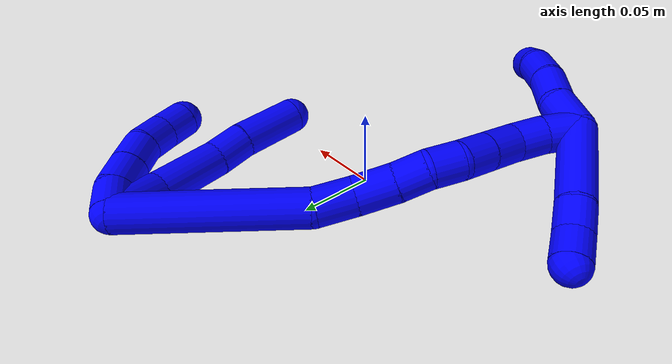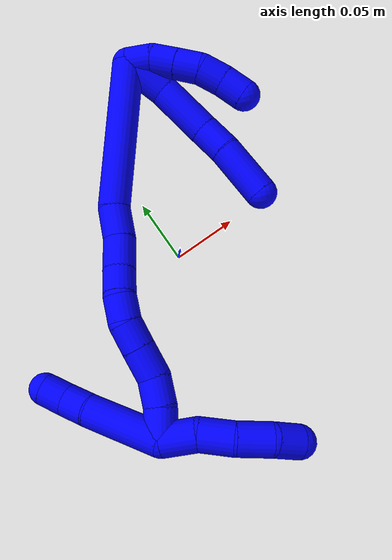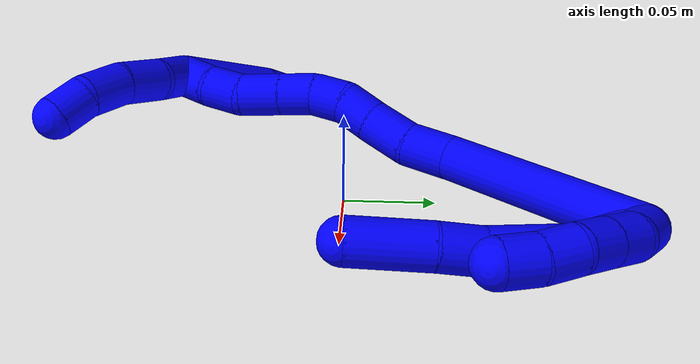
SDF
<sdf version="1.7">
 <world name="default">
  <model name="1">
   <static>0</static>
   <link name="1">
    <collision name="collision-cylinder-e_1_2_8">
     <pose>-0.013343 -0.004013 0.011307 0.341028 -0.838421 -0.153161</pose>
     <geometry><cylinder><radius>0.0125</radius><length>0.035889</length></cylinder></geometry>
     <surface>
      <friction><ode><mu>1.16</mu><mu2>1.16</mu2><slip1>0</slip1><slip2>0</slip2></ode></friction>
      <contact><ode><kp>1e+06</kp><kd>1</kd><max_vel>0</max_vel><min_depth>0.001</min_depth></ode></contact>
     </surface>
    </collision>
    <visual name="visual-cylinder-e_1_2_8">
     <pose>-0.013343 -0.004013 0.011307 0.341028 -0.838421 -0.153161</pose>
     <geometry><cylinder><radius>0.0125</radius><length>0.035889</length></cylinder></geometry>
     <material><ambient>0 0 1 1</ambient></material>
    </visual>
    <collision name="collision-cylinder-e_2_8_9">
     <pose>-0.045926 -0.007906 0.03513 -0.009609 -0.994059 0.005212</pose>
     <geometry><cylinder><radius>0.0125</radius><length>0.045904</length></cylinder></geometry>
     <surface>
      <friction><ode><mu>1.16</mu><mu2>1.16</mu2><slip1>0</slip1><slip2>0</slip2></ode></friction>
      <contact><ode><kp>1e+06</kp><kd>1</kd><max_vel>0</max_vel><min_depth>0.001</min_depth></ode></contact>
     </surface>
    </collision>
    <visual name="visual-cylinder-e_2_8_9">
     <pose>-0.045926 -0.007906 0.03513 -0.009609 -0.994059 0.005212</pose>
     <geometry><cylinder><radius>0.0125</radius><length>0.045904</length></cylinder></geometry>
     <material><ambient>0 0 1 1</ambient></material>
    </visual>
    <collision name="collision-cylinder-e_3_9_10">
     <pose>-0.075046 -0.006188 0.054219 -0.23831 -0.97037 0.126072</pose>
     <geometry><cylinder><radius>0.0125</radius><length>0.023951</length></cylinder></geometry>
     <surface>
      <friction><ode><mu>1.16</mu><mu2>1.16</mu2><slip1>0</slip1><slip2>0</slip2></ode></friction>
      <contact><ode><kp>1e+06</kp><kd>1</kd><max_vel>0</max_vel><min_depth>0.001</min_depth></ode></contact>
     </surface>
    </collision>
    <visual name="visual-cylinder-e_3_9_10">
     <pose>-0.075046 -0.006188 0.054219 -0.23831 -0.97037 0.126072</pose>
     <geometry><cylinder><radius>0.0125</radius><length>0.023951</length></cylinder></geometry>
     <material><ambient>0 0 1 1</ambient></material>
    </visual>
    <collision name="collision-cylinder-e_4_10_6">
     <pose>-0.104511 -0.003089 0.070986 -0.146349 -1.08654 0.088479</pose>
     <geometry><cylinder><radius>0.0125</radius><length>0.044256</length></cylinder></geometry>
     <surface>
      <friction><ode><mu>1.16</mu><mu2>1.16</mu2><slip1>0</slip1><slip2>0</slip2></ode></friction>
      <contact><ode><kp>1e+06</kp><kd>1</kd><max_vel>0</max_vel><min_depth>0.001</min_depth></ode></contact>
     </surface>
    </collision>
    <visual name="visual-cylinder-e_4_10_6">
     <pose>-0.104511 -0.003089 0.070986 -0.146349 -1.08654 0.088479</pose>
     <geometry><cylinder><radius>0.0125</radius><length>0.044256</length></cylinder></geometry>
     <material><ambient>0 0 1 1</ambient></material>
    </visual>
    <collision name="collision-cylinder-e_1_2_11">
     <pose>-0.000958 2.3e-05 0.009954 -0.002318 -0.095973 0.000111</pose>
     <geometry><cylinder><radius>0.0125</radius><length>0.02</length></cylinder></geometry>
     <surface>
      <friction><ode><mu>1.16</mu><mu2>1.16</mu2><slip1>0</slip1><slip2>0</slip2></ode></friction>
      <contact><ode><kp>1e+06</kp><kd>1</kd><max_vel>0</max_vel><min_depth>0.001</min_depth></ode></contact>
     </surface>
    </collision>
    <visual name="visual-cylinder-e_1_2_11">
     <pose>-0.000958 2.3e-05 0.009954 -0.002318 -0.095973 0.000111</pose>
     <geometry><cylinder><radius>0.0125</radius><length>0.02</length></cylinder></geometry>
     <material><ambient>0 0 1 1</ambient></material>
    </visual>
    <collision name="collision-cylinder-e_2_11_12">
     <pose>-0.0062 0.000354 0.028939 -0.034075 -0.442647 0.007668</pose>
     <geometry><cylinder><radius>0.0125</radius><length>0.02</length></cylinder></geometry>
     <surface>
      <friction><ode><mu>1.16</mu><mu2>1.16</mu2><slip1>0</slip1><slip2>0</slip2></ode></friction>
      <contact><ode><kp>1e+06</kp><kd>1</kd><max_vel>0</max_vel><min_depth>0.001</min_depth></ode></contact>
     </surface>
    </collision>
    <visual name="visual-cylinder-e_2_11_12">
     <pose>-0.0062 0.000354 0.028939 -0.034075 -0.442647 0.007668</pose>
     <geometry><cylinder><radius>0.0125</radius><length>0.02</length></cylinder></geometry>
     <material><ambient>0 0 1 1</ambient></material>
    </visual>
    <collision name="collision-cylinder-e_3_12_13">
     <pose>-0.01491 0.000783 0.046936 -0.013487 -0.45864 0.003148</pose>
     <geometry><cylinder><radius>0.0125</radius><length>0.02</length></cylinder></geometry>
     <surface>
      <friction><ode><mu>1.16</mu><mu2>1.16</mu2><slip1>0</slip1><slip2>0</slip2></ode></friction>
      <contact><ode><kp>1e+06</kp><kd>1</kd><max_vel>0</max_vel><min_depth>0.001</min_depth></ode></contact>
     </surface>
    </collision>
    <visual name="visual-cylinder-e_3_12_13">
     <pose>-0.01491 0.000783 0.046936 -0.013487 -0.45864 0.003148</pose>
     <geometry><cylinder><radius>0.0125</radius><length>0.02</length></cylinder></geometry>
     <material><ambient>0 0 1 1</ambient></material>
    </visual>
    <collision name="collision-cylinder-e_4_13_14">
     <pose>-0.025838 -0.000329 0.0634 0.162894 -0.707634 -0.060282</pose>
     <geometry><cylinder><radius>0.0125</radius><length>0.02</length></cylinder></geometry>
     <surface>
      <friction><ode><mu>1.16</mu><mu2>1.16</mu2><slip1>0</slip1><slip2>0</slip2></ode></friction>
      <contact><ode><kp>1e+06</kp><kd>1</kd><max_vel>0</max_vel><min_depth>0.001</min_depth></ode></contact>
     </surface>
    </collision>
    <visual name="visual-cylinder-e_4_13_14">
     <pose>-0.025838 -0.000329 0.0634 0.162894 -0.707634 -0.060282</pose>
     <geometry><cylinder><radius>0.0125</radius><length>0.02</length></cylinder></geometry>
     <material><ambient>0 0 1 1</ambient></material>
    </visual>
    <collision name="collision-cylinder-e_5_14_5">
     <pose>-0.039742 -0.001766 0.077617 0.030472 -0.833616 -0.013492</pose>
     <geometry><cylinder><radius>0.0125</radius><length>0.02</length></cylinder></geometry>
     <surface>
      <friction><ode><mu>1.16</mu><mu2>1.16</mu2><slip1>0</slip1><slip2>0</slip2></ode></friction>
      <contact><ode><kp>1e+06</kp><kd>1</kd><max_vel>0</max_vel><min_depth>0.001</min_depth></ode></contact>
     </surface>
    </collision>
    <visual name="visual-cylinder-e_5_14_5">
     <pose>-0.039742 -0.001766 0.077617 0.030472 -0.833616 -0.013492</pose>
     <geometry><cylinder><radius>0.0125</radius><length>0.02</length></cylinder></geometry>
     <material><ambient>0 0 1 1</ambient></material>
    </visual>
    <collision name="collision-cylinder-e_1_2_15">
     <pose>-0.056026 0.010728 -0.015079 -2.52326 -1.25177 2.30942</pose>
     <geometry><cylinder><radius>0.0125</radius><length>0.118007</length></cylinder></geometry>
     <surface>
      <friction><ode><mu>1.16</mu><mu2>1.16</mu2><slip1>0</slip1><slip2>0</slip2></ode></friction>
      <contact><ode><kp>1e+06</kp><kd>1</kd><max_vel>0</max_vel><min_depth>0.001</min_depth></ode></contact>
     </surface>
    </collision>
    <visual name="visual-cylinder-e_1_2_15">
     <pose>-0.056026 0.010728 -0.015079 -2.52326 -1.25177 2.30942</pose>
     <geometry><cylinder><radius>0.0125</radius><length>0.118007</length></cylinder></geometry>
     <material><ambient>0 0 1 1</ambient></material>
    </visual>
    <collision name="collision-cylinder-e_2_15_16">
     <pose>-0.124673 0.024441 -0.029839 -1.464 -1.3372 1.23457</pose>
     <geometry><cylinder><radius>0.0125</radius><length>0.025945</length></cylinder></geometry>
     <surface>
      <friction><ode><mu>1.16</mu><mu2>1.16</mu2><slip1>0</slip1><slip2>0</slip2></ode></friction>
      <contact><ode><kp>1e+06</kp><kd>1</kd><max_vel>0</max_vel><min_depth>0.001</min_depth></ode></contact>
     </surface>
    </collision>
    <visual name="visual-cylinder-e_2_15_16">
     <pose>-0.124673 0.024441 -0.029839 -1.464 -1.3372 1.23457</pose>
     <geometry><cylinder><radius>0.0125</radius><length>0.025945</length></cylinder></geometry>
     <material><ambient>0 0 1 1</ambient></material>
    </visual>
    <collision name="collision-cylinder-e_3_16_17">
     <pose>-0.149087 0.033046 -0.03081 -1.7967 -1.11608 1.32976</pose>
     <geometry><cylinder><radius>0.0125</radius><length>0.026255</length></cylinder></geometry>
     <surface>
      <friction><ode><mu>1.16</mu><mu2>1.16</mu2><slip1>0</slip1><slip2>0</slip2></ode></friction>
      <contact><ode><kp>1e+06</kp><kd>1</kd><max_vel>0</max_vel><min_depth>0.001</min_depth></ode></contact>
     </surface>
    </collision>
    <visual name="visual-cylinder-e_3_16_17">
     <pose>-0.149087 0.033046 -0.03081 -1.7967 -1.11608 1.32976</pose>
     <geometry><cylinder><radius>0.0125</radius><length>0.026255</length></cylinder></geometry>
     <material><ambient>0 0 1 1</ambient></material>
    </visual>
    <collision name="collision-cylinder-e_4_17_18">
     <pose>-0.169692 0.0436 -0.032539 -1.65923 -1.05861 1.13741</pose>
     <geometry><cylinder><radius>0.0125</radius><length>0.020219</length></cylinder></geometry>
     <surface>
      <friction><ode><mu>1.16</mu><mu2>1.16</mu2><slip1>0</slip1><slip2>0</slip2></ode></friction>
      <contact><ode><kp>1e+06</kp><kd>1</kd><max_vel>0</max_vel><min_depth>0.001</min_depth></ode></contact>
     </surface>
    </collision>
    <visual name="visual-cylinder-e_4_17_18">
     <pose>-0.169692 0.0436 -0.032539 -1.65923 -1.05861 1.13741</pose>
     <geometry><cylinder><radius>0.0125</radius><length>0.020219</length></cylinder></geometry>
     <material><ambient>0 0 1 1</ambient></material>
    </visual>
    <collision name="collision-cylinder-e_5_18_19">
     <pose>-0.188415 0.050576 -0.032524 -1.35246 -1.3629 1.15392</pose>
     <geometry><cylinder><radius>0.0125</radius><length>0.020257</length></cylinder></geometry>
     <surface>
      <friction><ode><mu>1.16</mu><mu2>1.16</mu2><slip1>0</slip1><slip2>0</slip2></ode></friction>
      <contact><ode><kp>1e+06</kp><kd>1</kd><max_vel>0</max_vel><min_depth>0.001</min_depth></ode></contact>
     </surface>
    </collision>
    <visual name="visual-cylinder-e_5_18_19">
     <pose>-0.188415 0.050576 -0.032524 -1.35246 -1.3629 1.15392</pose>
     <geometry><cylinder><radius>0.0125</radius><length>0.020257</length></cylinder></geometry>
     <material><ambient>0 0 1 1</ambient></material>
    </visual>
    <collision name="collision-cylinder-e_6_19_20">
     <pose>-0.208243 0.052422 -0.02924 0.068878 -1.29209 -0.051942</pose>
     <geometry><cylinder><radius>0.0125</radius><length>0.02063</length></cylinder></geometry>
     <surface>
      <friction><ode><mu>1.16</mu><mu2>1.16</mu2><slip1>0</slip1><slip2>0</slip2></ode></friction>
      <contact><ode><kp>1e+06</kp><kd>1</kd><max_vel>0</max_vel><min_depth>0.001</min_depth></ode></contact>
     </surface>
    </collision>
    <visual name="visual-cylinder-e_6_19_20">
     <pose>-0.208243 0.052422 -0.02924 0.068878 -1.29209 -0.051942</pose>
     <geometry><cylinder><radius>0.0125</radius><length>0.02063</length></cylinder></geometry>
     <material><ambient>0 0 1 1</ambient></material>
    </visual>
    <collision name="collision-cylinder-e_7_20_21">
     <pose>-0.229685 0.051806 -0.022956 0.121326 -1.27771 -0.090166</pose>
     <geometry><cylinder><radius>0.0125</radius><length>0.024079</length></cylinder></geometry>
     <surface>
      <friction><ode><mu>1.16</mu><mu2>1.16</mu2><slip1>0</slip1><slip2>0</slip2></ode></friction>
      <contact><ode><kp>1e+06</kp><kd>1</kd><max_vel>0</max_vel><min_depth>0.001</min_depth></ode></contact>
     </surface>
    </collision>
    <visual name="visual-cylinder-e_7_20_21">
     <pose>-0.229685 0.051806 -0.022956 0.121326 -1.27771 -0.090166</pose>
     <geometry><cylinder><radius>0.0125</radius><length>0.024079</length></cylinder></geometry>
     <material><ambient>0 0 1 1</ambient></material>
    </visual>
    <collision name="collision-cylinder-e_8_21_22">
     <pose>-0.251798 0.053555 -0.018974 -1.33154 -1.36282 1.13429</pose>
     <geometry><cylinder><radius>0.0125</radius><length>0.021639</length></cylinder></geometry>
     <surface>
      <friction><ode><mu>1.16</mu><mu2>1.16</mu2><slip1>0</slip1><slip2>0</slip2></ode></friction>
      <contact><ode><kp>1e+06</kp><kd>1</kd><max_vel>0</max_vel><min_depth>0.001</min_depth></ode></contact>
     </surface>
    </collision>
    <visual name="visual-cylinder-e_8_21_22">
     <pose>-0.251798 0.053555 -0.018974 -1.33154 -1.36282 1.13429</pose>
     <geometry><cylinder><radius>0.0125</radius><length>0.021639</length></cylinder></geometry>
     <material><ambient>0 0 1 1</ambient></material>
    </visual>
    <collision name="collision-cylinder-e_9_22_1">
     <pose>-0.273426 0.058445 -0.020049 -2.10377 -1.29232 1.8453</pose>
     <geometry><cylinder><radius>0.0125</radius><length>0.022969</length></cylinder></geometry>
     <surface>
      <friction><ode><mu>1.16</mu><mu2>1.16</mu2><slip1>0</slip1><slip2>0</slip2></ode></friction>
      <contact><ode><kp>1e+06</kp><kd>1</kd><max_vel>0</max_vel><min_depth>0.001</min_depth></ode></contact>
     </surface>
    </collision>
    <visual name="visual-cylinder-e_9_22_1">
     <pose>-0.273426 0.058445 -0.020049 -2.10377 -1.29232 1.8453</pose>
     <geometry><cylinder><radius>0.0125</radius><length>0.022969</length></cylinder></geometry>
     <material><ambient>0 0 1 1</ambient></material>
    </visual>
    <collision name="collision-cylinder-e_1_1_23">
     <pose>-0.270676 0.055751 -0.047433 2.93464 0.482328 2.34255</pose>
     <geometry><cylinder><radius>0.0125</radius><length>0.059469</length></cylinder></geometry>
     <surface>
      <friction><ode><mu>1.16</mu><mu2>1.16</mu2><slip1>0</slip1><slip2>0</slip2></ode></friction>
      <contact><ode><kp>1e+06</kp><kd>1</kd><max_vel>0</max_vel><min_depth>0.001</min_depth></ode></contact>
     </surface>
    </collision>
    <visual name="visual-cylinder-e_1_1_23">
     <pose>-0.270676 0.055751 -0.047433 2.93464 0.482328 2.34255</pose>
     <geometry><cylinder><radius>0.0125</radius><length>0.059469</length></cylinder></geometry>
     <material><ambient>0 0 1 1</ambient></material>
    </visual>
    <collision name="collision-cylinder-e_2_23_24">
     <pose>-0.252407 0.047053 -0.081766 2.77493 0.454537 1.79</pose>
     <geometry><cylinder><radius>0.0125</radius><length>0.020395</length></cylinder></geometry>
     <surface>
      <friction><ode><mu>1.16</mu><mu2>1.16</mu2><slip1>0</slip1><slip2>0</slip2></ode></friction>
      <contact><ode><kp>1e+06</kp><kd>1</kd><max_vel>0</max_vel><min_depth>0.001</min_depth></ode></contact>
     </surface>
    </collision>
    <visual name="visual-cylinder-e_2_23_24">
     <pose>-0.252407 0.047053 -0.081766 2.77493 0.454537 1.79</pose>
     <geometry><cylinder><radius>0.0125</radius><length>0.020395</length></cylinder></geometry>
     <material><ambient>0 0 1 1</ambient></material>
    </visual>
    <collision name="collision-cylinder-e_3_24_4">
     <pose>-0.242497 0.042494 -0.0987 2.99062 0.569926 2.63626</pose>
     <geometry><cylinder><radius>0.0125</radius><length>0.020136</length></cylinder></geometry>
     <surface>
      <friction><ode><mu>1.16</mu><mu2>1.16</mu2><slip1>0</slip1><slip2>0</slip2></ode></friction>
      <contact><ode><kp>1e+06</kp><kd>1</kd><max_vel>0</max_vel><min_depth>0.001</min_depth></ode></contact>
     </surface>
    </collision>
    <visual name="visual-cylinder-e_3_24_4">
     <pose>-0.242497 0.042494 -0.0987 2.99062 0.569926 2.63626</pose>
     <geometry><cylinder><radius>0.0125</radius><length>0.020136</length></cylinder></geometry>
     <material><ambient>0 0 1 1</ambient></material>
    </visual>
    <collision name="collision-cylinder-e_1_1_25">
     <pose>-0.284517 0.061109 -0.008097 0.004024 -0.003589 -7e-06</pose>
     <geometry><cylinder><radius>0.0125</radius><length>0.027112</length></cylinder></geometry>
     <surface>
      <friction><ode><mu>1.16</mu><mu2>1.16</mu2><slip1>0</slip1><slip2>0</slip2></ode></friction>
      <contact><ode><kp>1e+06</kp><kd>1</kd><max_vel>0</max_vel><min_depth>0.001</min_depth></ode></contact>
     </surface>
    </collision>
    <visual name="visual-cylinder-e_1_1_25">
     <pose>-0.284517 0.061109 -0.008097 0.004024 -0.003589 -7e-06</pose>
     <geometry><cylinder><radius>0.0125</radius><length>0.027112</length></cylinder></geometry>
     <material><ambient>0 0 1 1</ambient></material>
    </visual>
    <collision name="collision-cylinder-e_2_25_26">
     <pose>-0.288227 0.060898 0.017951 0.01251 -0.285127 -0.001796</pose>
     <geometry><cylinder><radius>0.0125</radius><length>0.026037</length></cylinder></geometry>
     <surface>
      <friction><ode><mu>1.16</mu><mu2>1.16</mu2><slip1>0</slip1><slip2>0</slip2></ode></friction>
      <contact><ode><kp>1e+06</kp><kd>1</kd><max_vel>0</max_vel><min_depth>0.001</min_depth></ode></contact>
     </surface>
    </collision>
    <visual name="visual-cylinder-e_2_25_26">
     <pose>-0.288227 0.060898 0.017951 0.01251 -0.285127 -0.001796</pose>
     <geometry><cylinder><radius>0.0125</radius><length>0.026037</length></cylinder></geometry>
     <material><ambient>0 0 1 1</ambient></material>
    </visual>
    <collision name="collision-cylinder-e_3_26_27">
     <pose>-0.294961 0.058091 0.042948 0.208876 -0.235856 -0.024836</pose>
     <geometry><cylinder><radius>0.0125</radius><length>0.026294</length></cylinder></geometry>
     <surface>
      <friction><ode><mu>1.16</mu><mu2>1.16</mu2><slip1>0</slip1><slip2>0</slip2></ode></friction>
      <contact><ode><kp>1e+06</kp><kd>1</kd><max_vel>0</max_vel><min_depth>0.001</min_depth></ode></contact>
     </surface>
    </collision>
    <visual name="visual-cylinder-e_3_26_27">
     <pose>-0.294961 0.058091 0.042948 0.208876 -0.235856 -0.024836</pose>
     <geometry><cylinder><radius>0.0125</radius><length>0.026294</length></cylinder></geometry>
     <material><ambient>0 0 1 1</ambient></material>
    </visual>
    <collision name="collision-cylinder-e_4_27_3">
     <pose>-0.301503 0.05054 0.063795 0.531161 -0.344358 -0.094534</pose>
     <geometry><cylinder><radius>0.0125</radius><length>0.020557</length></cylinder></geometry>
     <surface>
      <friction><ode><mu>1.16</mu><mu2>1.16</mu2><slip1>0</slip1><slip2>0</slip2></ode></friction>
      <contact><ode><kp>1e+06</kp><kd>1</kd><max_vel>0</max_vel><min_depth>0.001</min_depth></ode></contact>
     </surface>
    </collision>
    <visual name="visual-cylinder-e_4_27_3">
     <pose>-0.301503 0.05054 0.063795 0.531161 -0.344358 -0.094534</pose>
     <geometry><cylinder><radius>0.0125</radius><length>0.020557</length></cylinder></geometry>
     <material><ambient>0 0 1 1</ambient></material>
    </visual>
    <collision name="collision-sphere-3">
     <pose>-0.304973 0.045639 0.072137 0 -0 0</pose>
     <geometry><sphere><radius>0.0125</radius></sphere></geometry>
     <surface>
      <friction><ode><mu>1.16</mu><mu2>1.16</mu2><slip1>0</slip1><slip2>0</slip2></ode></friction>
      <contact><ode><kp>1e+06</kp><kd>1</kd><max_vel>0</max_vel><min_depth>0.001</min_depth></ode></contact>
     </surface>
    </collision>
    <visual name="visual-sphere-3">
     <pose>-0.304973 0.045639 0.072137 0 -0 0</pose>
     <geometry><sphere><radius>0.0125</radius></sphere></geometry>
     <material><ambient>0 0 1 1</ambient></material>
    </visual>
    <collision name="collision-sphere-27">
     <pose>-0.298033 0.05544 0.055453 0 -0 0</pose>
     <geometry><sphere><radius>0.0125</radius></sphere></geometry>
     <surface>
      <friction><ode><mu>1.16</mu><mu2>1.16</mu2><slip1>0</slip1><slip2>0</slip2></ode></friction>
      <contact><ode><kp>1e+06</kp><kd>1</kd><max_vel>0</max_vel><min_depth>0.001</min_depth></ode></contact>
     </surface>
    </collision>
    <visual name="visual-sphere-27">
     <pose>-0.298033 0.05544 0.055453 0 -0 0</pose>
     <geometry><sphere><radius>0.0125</radius></sphere></geometry>
     <material><ambient>0 0 1 1</ambient></material>
    </visual>
    <collision name="collision-sphere-26">
     <pose>-0.291889 0.060742 0.030443 0 -0 0</pose>
     <geometry><sphere><radius>0.0125</radius></sphere></geometry>
     <surface>
      <friction><ode><mu>1.16</mu><mu2>1.16</mu2><slip1>0</slip1><slip2>0</slip2></ode></friction>
      <contact><ode><kp>1e+06</kp><kd>1</kd><max_vel>0</max_vel><min_depth>0.001</min_depth></ode></contact>
     </surface>
    </collision>
    <visual name="visual-sphere-26">
     <pose>-0.291889 0.060742 0.030443 0 -0 0</pose>
     <geometry><sphere><radius>0.0125</radius></sphere></geometry>
     <material><ambient>0 0 1 1</ambient></material>
    </visual>
    <collision name="collision-sphere-25">
     <pose>-0.284565 0.061054 0.005459 0 -0 0</pose>
     <geometry><sphere><radius>0.0125</radius></sphere></geometry>
     <surface>
      <friction><ode><mu>1.16</mu><mu2>1.16</mu2><slip1>0</slip1><slip2>0</slip2></ode></friction>
      <contact><ode><kp>1e+06</kp><kd>1</kd><max_vel>0</max_vel><min_depth>0.001</min_depth></ode></contact>
     </surface>
    </collision>
    <visual name="visual-sphere-25">
     <pose>-0.284565 0.061054 0.005459 0 -0 0</pose>
     <geometry><sphere><radius>0.0125</radius></sphere></geometry>
     <material><ambient>0 0 1 1</ambient></material>
    </visual>
    <collision name="collision-sphere-4">
     <pose>-0.237065 0.041219 -0.10708 0 -0 0</pose>
     <geometry><sphere><radius>0.0125</radius></sphere></geometry>
     <surface>
      <friction><ode><mu>1.16</mu><mu2>1.16</mu2><slip1>0</slip1><slip2>0</slip2></ode></friction>
      <contact><ode><kp>1e+06</kp><kd>1</kd><max_vel>0</max_vel><min_depth>0.001</min_depth></ode></contact>
     </surface>
    </collision>
    <visual name="visual-sphere-4">
     <pose>-0.237065 0.041219 -0.10708 0 -0 0</pose>
     <geometry><sphere><radius>0.0125</radius></sphere></geometry>
     <material><ambient>0 0 1 1</ambient></material>
    </visual>
    <collision name="collision-sphere-24">
     <pose>-0.24793 0.043769 -0.090319 0 -0 0</pose>
     <geometry><sphere><radius>0.0125</radius></sphere></geometry>
     <surface>
      <friction><ode><mu>1.16</mu><mu2>1.16</mu2><slip1>0</slip1><slip2>0</slip2></ode></friction>
      <contact><ode><kp>1e+06</kp><kd>1</kd><max_vel>0</max_vel><min_depth>0.001</min_depth></ode></contact>
     </surface>
    </collision>
    <visual name="visual-sphere-24">
     <pose>-0.24793 0.043769 -0.090319 0 -0 0</pose>
     <geometry><sphere><radius>0.0125</radius></sphere></geometry>
     <material><ambient>0 0 1 1</ambient></material>
    </visual>
    <collision name="collision-sphere-23">
     <pose>-0.256884 0.050338 -0.073213 0 -0 0</pose>
     <geometry><sphere><radius>0.0125</radius></sphere></geometry>
     <surface>
      <friction><ode><mu>1.16</mu><mu2>1.16</mu2><slip1>0</slip1><slip2>0</slip2></ode></friction>
      <contact><ode><kp>1e+06</kp><kd>1</kd><max_vel>0</max_vel><min_depth>0.001</min_depth></ode></contact>
     </surface>
    </collision>
    <visual name="visual-sphere-23">
     <pose>-0.256884 0.050338 -0.073213 0 -0 0</pose>
     <geometry><sphere><radius>0.0125</radius></sphere></geometry>
     <material><ambient>0 0 1 1</ambient></material>
    </visual>
    <collision name="collision-sphere-1">
     <pose>-0.284468 0.061164 -0.021653 0 -0 0</pose>
     <geometry><sphere><radius>0.0125</radius></sphere></geometry>
     <surface>
      <friction><ode><mu>1.16</mu><mu2>1.16</mu2><slip1>0</slip1><slip2>0</slip2></ode></friction>
      <contact><ode><kp>1e+06</kp><kd>1</kd><max_vel>0</max_vel><min_depth>0.001</min_depth></ode></contact>
     </surface>
    </collision>
    <visual name="visual-sphere-1">
     <pose>-0.284468 0.061164 -0.021653 0 -0 0</pose>
     <geometry><sphere><radius>0.0125</radius></sphere></geometry>
     <material><ambient>0 0 1 1</ambient></material>
    </visual>
    <collision name="collision-sphere-22">
     <pose>-0.262384 0.055725 -0.018445 0 -0 0</pose>
     <geometry><sphere><radius>0.0125</radius></sphere></geometry>
     <surface>
      <friction><ode><mu>1.16</mu><mu2>1.16</mu2><slip1>0</slip1><slip2>0</slip2></ode></friction>
      <contact><ode><kp>1e+06</kp><kd>1</kd><max_vel>0</max_vel><min_depth>0.001</min_depth></ode></contact>
     </surface>
    </collision>
    <visual name="visual-sphere-22">
     <pose>-0.262384 0.055725 -0.018445 0 -0 0</pose>
     <geometry><sphere><radius>0.0125</radius></sphere></geometry>
     <material><ambient>0 0 1 1</ambient></material>
    </visual>
    <collision name="collision-sphere-21">
     <pose>-0.241212 0.051385 -0.019504 0 -0 0</pose>
     <geometry><sphere><radius>0.0125</radius></sphere></geometry>
     <surface>
      <friction><ode><mu>1.16</mu><mu2>1.16</mu2><slip1>0</slip1><slip2>0</slip2></ode></friction>
      <contact><ode><kp>1e+06</kp><kd>1</kd><max_vel>0</max_vel><min_depth>0.001</min_depth></ode></contact>
     </surface>
    </collision>
    <visual name="visual-sphere-21">
     <pose>-0.241212 0.051385 -0.019504 0 -0 0</pose>
     <geometry><sphere><radius>0.0125</radius></sphere></geometry>
     <material><ambient>0 0 1 1</ambient></material>
    </visual>
    <collision name="collision-sphere-11">
     <pose>-0.001917 4.6e-05 0.019908 0 -0 0</pose>
     <geometry><sphere><radius>0.0125</radius></sphere></geometry>
     <surface>
      <friction><ode><mu>1.16</mu><mu2>1.16</mu2><slip1>0</slip1><slip2>0</slip2></ode></friction>
      <contact><ode><kp>1e+06</kp><kd>1</kd><max_vel>0</max_vel><min_depth>0.001</min_depth></ode></contact>
     </surface>
    </collision>
    <visual name="visual-sphere-11">
     <pose>-0.001917 4.6e-05 0.019908 0 -0 0</pose>
     <geometry><sphere><radius>0.0125</radius></sphere></geometry>
     <material><ambient>0 0 1 1</ambient></material>
    </visual>
    <collision name="collision-sphere-6">
     <pose>-0.124095 -0.001586 0.081177 0 -0 0</pose>
     <geometry><sphere><radius>0.0125</radius></sphere></geometry>
     <surface>
      <friction><ode><mu>1.16</mu><mu2>1.16</mu2><slip1>0</slip1><slip2>0</slip2></ode></friction>
      <contact><ode><kp>1e+06</kp><kd>1</kd><max_vel>0</max_vel><min_depth>0.001</min_depth></ode></contact>
     </surface>
    </collision>
    <visual name="visual-sphere-6">
     <pose>-0.124095 -0.001586 0.081177 0 -0 0</pose>
     <geometry><sphere><radius>0.0125</radius></sphere></geometry>
     <material><ambient>0 0 1 1</ambient></material>
    </visual>
    <collision name="collision-sphere-10">
     <pose>-0.084927 -0.004591 0.060794 0 -0 0</pose>
     <geometry><sphere><radius>0.0125</radius></sphere></geometry>
     <surface>
      <friction><ode><mu>1.16</mu><mu2>1.16</mu2><slip1>0</slip1><slip2>0</slip2></ode></friction>
      <contact><ode><kp>1e+06</kp><kd>1</kd><max_vel>0</max_vel><min_depth>0.001</min_depth></ode></contact>
     </surface>
    </collision>
    <visual name="visual-sphere-10">
     <pose>-0.084927 -0.004591 0.060794 0 -0 0</pose>
     <geometry><sphere><radius>0.0125</radius></sphere></geometry>
     <material><ambient>0 0 1 1</ambient></material>
    </visual>
    <collision name="collision-sphere-9">
     <pose>-0.065165 -0.007785 0.047645 0 -0 0</pose>
     <geometry><sphere><radius>0.0125</radius></sphere></geometry>
     <surface>
      <friction><ode><mu>1.16</mu><mu2>1.16</mu2><slip1>0</slip1><slip2>0</slip2></ode></friction>
      <contact><ode><kp>1e+06</kp><kd>1</kd><max_vel>0</max_vel><min_depth>0.001</min_depth></ode></contact>
     </surface>
    </collision>
    <visual name="visual-sphere-9">
     <pose>-0.065165 -0.007785 0.047645 0 -0 0</pose>
     <geometry><sphere><radius>0.0125</radius></sphere></geometry>
     <material><ambient>0 0 1 1</ambient></material>
    </visual>
    <collision name="collision-sphere-2">
     <geometry><sphere><radius>0.0125</radius></sphere></geometry>
     <surface>
      <friction><ode><mu>1.16</mu><mu2>1.16</mu2><slip1>0</slip1><slip2>0</slip2></ode></friction>
      <contact><ode><kp>1e+06</kp><kd>1</kd><max_vel>0</max_vel><min_depth>0.001</min_depth></ode></contact>
     </surface>
    </collision>
    <visual name="visual-sphere-2">
     <geometry><sphere><radius>0.0125</radius></sphere></geometry>
     <material><ambient>0 0 1 1</ambient></material>
    </visual>
    <collision name="collision-sphere-19">
     <pose>-0.198326 0.052617 -0.032071 0 -0 0</pose>
     <geometry><sphere><radius>0.0125</radius></sphere></geometry>
     <surface>
      <friction><ode><mu>1.16</mu><mu2>1.16</mu2><slip1>0</slip1><slip2>0</slip2></ode></friction>
      <contact><ode><kp>1e+06</kp><kd>1</kd><max_vel>0</max_vel><min_depth>0.001</min_depth></ode></contact>
     </surface>
    </collision>
    <visual name="visual-sphere-19">
     <pose>-0.198326 0.052617 -0.032071 0 -0 0</pose>
     <geometry><sphere><radius>0.0125</radius></sphere></geometry>
     <material><ambient>0 0 1 1</ambient></material>
    </visual>
    <collision name="collision-sphere-8">
     <pose>-0.026687 -0.008026 0.022615 0 -0 0</pose>
     <geometry><sphere><radius>0.0125</radius></sphere></geometry>
     <surface>
      <friction><ode><mu>1.16</mu><mu2>1.16</mu2><slip1>0</slip1><slip2>0</slip2></ode></friction>
      <contact><ode><kp>1e+06</kp><kd>1</kd><max_vel>0</max_vel><min_depth>0.001</min_depth></ode></contact>
     </surface>
    </collision>
    <visual name="visual-sphere-8">
     <pose>-0.026687 -0.008026 0.022615 0 -0 0</pose>
     <geometry><sphere><radius>0.0125</radius></sphere></geometry>
     <material><ambient>0 0 1 1</ambient></material>
    </visual>
    <collision name="collision-sphere-12">
     <pose>-0.010483 0.000662 0.03797 0 -0 0</pose>
     <geometry><sphere><radius>0.0125</radius></sphere></geometry>
     <surface>
      <friction><ode><mu>1.16</mu><mu2>1.16</mu2><slip1>0</slip1><slip2>0</slip2></ode></friction>
      <contact><ode><kp>1e+06</kp><kd>1</kd><max_vel>0</max_vel><min_depth>0.001</min_depth></ode></contact>
     </surface>
    </collision>
    <visual name="visual-sphere-12">
     <pose>-0.010483 0.000662 0.03797 0 -0 0</pose>
     <geometry><sphere><radius>0.0125</radius></sphere></geometry>
     <material><ambient>0 0 1 1</ambient></material>
    </visual>
    <collision name="collision-sphere-13">
     <pose>-0.019338 0.000904 0.055901 0 -0 0</pose>
     <geometry><sphere><radius>0.0125</radius></sphere></geometry>
     <surface>
      <friction><ode><mu>1.16</mu><mu2>1.16</mu2><slip1>0</slip1><slip2>0</slip2></ode></friction>
      <contact><ode><kp>1e+06</kp><kd>1</kd><max_vel>0</max_vel><min_depth>0.001</min_depth></ode></contact>
     </surface>
    </collision>
    <visual name="visual-sphere-13">
     <pose>-0.019338 0.000904 0.055901 0 -0 0</pose>
     <geometry><sphere><radius>0.0125</radius></sphere></geometry>
     <material><ambient>0 0 1 1</ambient></material>
    </visual>
    <collision name="collision-sphere-14">
     <pose>-0.032339 -0.001561 0.070898 0 -0 0</pose>
     <geometry><sphere><radius>0.0125</radius></sphere></geometry>
     <surface>
      <friction><ode><mu>1.16</mu><mu2>1.16</mu2><slip1>0</slip1><slip2>0</slip2></ode></friction>
      <contact><ode><kp>1e+06</kp><kd>1</kd><max_vel>0</max_vel><min_depth>0.001</min_depth></ode></contact>
     </surface>
    </collision>
    <visual name="visual-sphere-14">
     <pose>-0.032339 -0.001561 0.070898 0 -0 0</pose>
     <geometry><sphere><radius>0.0125</radius></sphere></geometry>
     <material><ambient>0 0 1 1</ambient></material>
    </visual>
    <collision name="collision-sphere-5">
     <pose>-0.047146 -0.001971 0.084336 0 -0 0</pose>
     <geometry><sphere><radius>0.0125</radius></sphere></geometry>
     <surface>
      <friction><ode><mu>1.16</mu><mu2>1.16</mu2><slip1>0</slip1><slip2>0</slip2></ode></friction>
      <contact><ode><kp>1e+06</kp><kd>1</kd><max_vel>0</max_vel><min_depth>0.001</min_depth></ode></contact>
     </surface>
    </collision>
    <visual name="visual-sphere-5">
     <pose>-0.047146 -0.001971 0.084336 0 -0 0</pose>
     <geometry><sphere><radius>0.0125</radius></sphere></geometry>
     <material><ambient>0 0 1 1</ambient></material>
    </visual>
    <collision name="collision-sphere-15">
     <pose>-0.112053 0.021455 -0.030159 0 -0 0</pose>
     <geometry><sphere><radius>0.0125</radius></sphere></geometry>
     <surface>
      <friction><ode><mu>1.16</mu><mu2>1.16</mu2><slip1>0</slip1><slip2>0</slip2></ode></friction>
      <contact><ode><kp>1e+06</kp><kd>1</kd><max_vel>0</max_vel><min_depth>0.001</min_depth></ode></contact>
     </surface>
    </collision>
    <visual name="visual-sphere-15">
     <pose>-0.112053 0.021455 -0.030159 0 -0 0</pose>
     <geometry><sphere><radius>0.0125</radius></sphere></geometry>
     <material><ambient>0 0 1 1</ambient></material>
    </visual>
    <collision name="collision-sphere-16">
     <pose>-0.137293 0.027426 -0.029519 0 -0 0</pose>
     <geometry><sphere><radius>0.0125</radius></sphere></geometry>
     <surface>
      <friction><ode><mu>1.16</mu><mu2>1.16</mu2><slip1>0</slip1><slip2>0</slip2></ode></friction>
      <contact><ode><kp>1e+06</kp><kd>1</kd><max_vel>0</max_vel><min_depth>0.001</min_depth></ode></contact>
     </surface>
    </collision>
    <visual name="visual-sphere-16">
     <pose>-0.137293 0.027426 -0.029519 0 -0 0</pose>
     <geometry><sphere><radius>0.0125</radius></sphere></geometry>
     <material><ambient>0 0 1 1</ambient></material>
    </visual>
    <collision name="collision-sphere-17">
     <pose>-0.16088 0.038665 -0.032102 0 -0 0</pose>
     <geometry><sphere><radius>0.0125</radius></sphere></geometry>
     <surface>
      <friction><ode><mu>1.16</mu><mu2>1.16</mu2><slip1>0</slip1><slip2>0</slip2></ode></friction>
      <contact><ode><kp>1e+06</kp><kd>1</kd><max_vel>0</max_vel><min_depth>0.001</min_depth></ode></contact>
     </surface>
    </collision>
    <visual name="visual-sphere-17">
     <pose>-0.16088 0.038665 -0.032102 0 -0 0</pose>
     <geometry><sphere><radius>0.0125</radius></sphere></geometry>
     <material><ambient>0 0 1 1</ambient></material>
    </visual>
    <collision name="collision-sphere-18">
     <pose>-0.178505 0.048535 -0.032977 0 -0 0</pose>
     <geometry><sphere><radius>0.0125</radius></sphere></geometry>
     <surface>
      <friction><ode><mu>1.16</mu><mu2>1.16</mu2><slip1>0</slip1><slip2>0</slip2></ode></friction>
      <contact><ode><kp>1e+06</kp><kd>1</kd><max_vel>0</max_vel><min_depth>0.001</min_depth></ode></contact>
     </surface>
    </collision>
    <visual name="visual-sphere-18">
     <pose>-0.178505 0.048535 -0.032977 0 -0 0</pose>
     <geometry><sphere><radius>0.0125</radius></sphere></geometry>
     <material><ambient>0 0 1 1</ambient></material>
    </visual>
    <collision name="collision-sphere-20">
     <pose>-0.218159 0.052227 -0.026409 0 -0 0</pose>
     <geometry><sphere><radius>0.0125</radius></sphere></geometry>
     <surface>
      <friction><ode><mu>1.16</mu><mu2>1.16</mu2><slip1>0</slip1><slip2>0</slip2></ode></friction>
      <contact><ode><kp>1e+06</kp><kd>1</kd><max_vel>0</max_vel><min_depth>0.001</min_depth></ode></contact>
     </surface>
    </collision>
    <visual name="visual-sphere-20">
     <pose>-0.218159 0.052227 -0.026409 0 -0 0</pose>
     <geometry><sphere><radius>0.0125</radius></sphere></geometry>
     <material><ambient>0 0 1 1</ambient></material>
    </visual>
    <inertial>
     <pose>-0.144835 0.026177 0.000669 0 -0 0</pose>
     <mass>0.75</mass>
     <inertia><ixx>5e-06</ixx><ixy>0</ixy><ixz>0</ixz><iyy>0.00026</iyy><iyz>0</iyz><izz>0.000154</izz></inertia>
    </inertial>
   </link>
   <pose>0.055258 0.149403 0.016164 1.36125 -0.110022 1.16762</pose>
  </model>
 </world>
</sdf>
